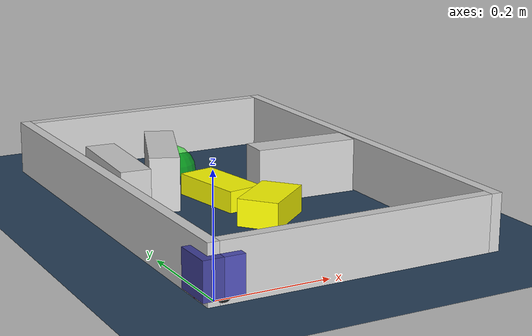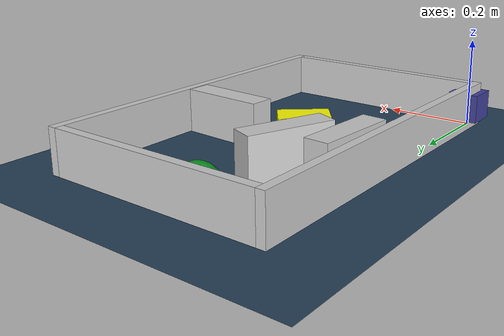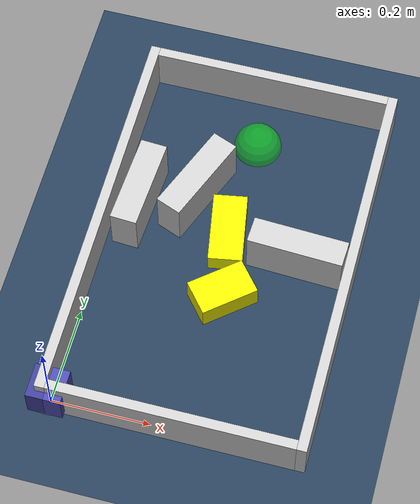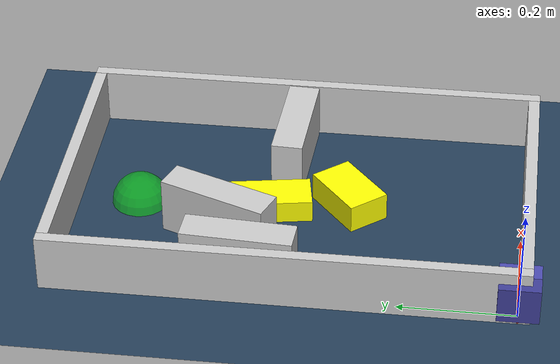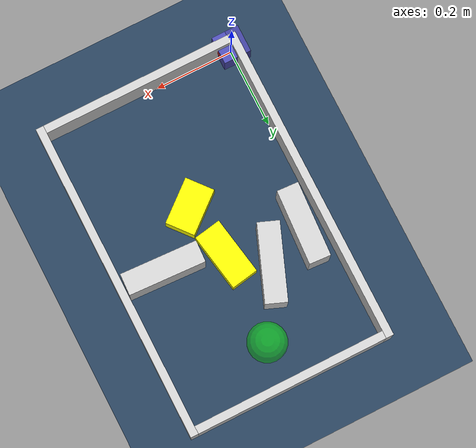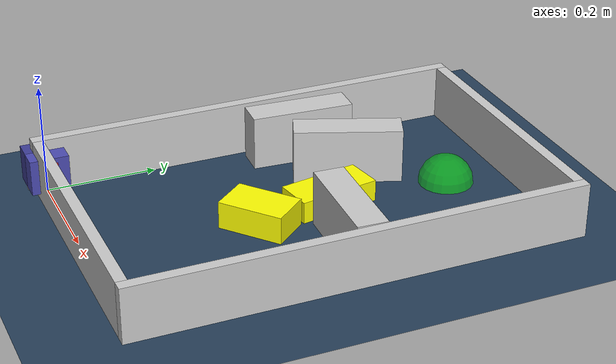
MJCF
<?xml version="1.0" ?>
<mujoco model="generated_environment">
  <option cone="elliptic" integrator="implicitfast" iterations="100" timestep="0.002"/>
  <default>
    <geom density="1"/>
  </default>
  <asset>
    <texture builtin="gradient" height="3072" rgb1="0.3 0.5 0.7" rgb2="0 0 0" type="skybox" width="512"/>
    <texture builtin="checker" height="300" mark="edge" markrgb="0.8 0.8 0.8" name="groundplane" rgb1="0.2 0.3 0.4" rgb2="0.1 0.2 0.3" type="2d" width="300"/>
    <material name="groundplane" reflectance="0.2" texrepeat="5 5" texture="groundplane" texuniform="true"/>
    <material name="robot" rgba="1.0 1.0 0.0 1.0"/>
  </asset>
  <include file="/home/dhruv/projects_dhruv/namo/namo_cpp/test_xml/little-car-modeling-package/assets/mjcf/little_car.xml"/>
  <worldbody>
    <light dir="0 0 -1" directional="true" pos="0 0 1.5"/>
    <geom condim="4" friction="0.5 0.005 0.001" material="groundplane" name="floor" size="0 0 0.05" type="plane"/>
    <body name="walls">
      <geom name="wall_1" condim="4" pos="-0.01 0.3875 0.05" friction="1 0.005 0.0001" rgba="0.800000011920929 0.800000011920929 0.800000011920929 1.0" size="0.01 0.40750000000000003 0.05" type="box"/>
      <geom name="wall_2" condim="4" pos="0.5 0.3875 0.05" friction="1 0.005 0.0001" rgba="0.800000011920929 0.800000011920929 0.800000011920929 1.0" size="0.01 0.40750000000000003 0.05" type="box"/>
      <geom name="wall_3" condim="4" pos="0.245 -0.01 0.05" friction="1 0.005 0.0001" rgba="0.800000011920929 0.800000011920929 0.800000011920929 1.0" size="0.245 0.01 0.05" type="box"/>
      <geom name="wall_4" condim="4" pos="0.245 0.785 0.05" friction="1 0.005 0.0001" rgba="0.800000011920929 0.800000011920929 0.800000011920929 1.0" size="0.245 0.01 0.05" type="box"/>
    </body>
    <body name="obstacle_1_movable">
      <geom name="obstacle_1_movable" condim="4" pos="0.23855861295672662 0.44191595954652496 0.02" quat="0.9961665807766763 0 0 0.08747653024500743" friction="1 0.005 0.0001" rgba="1 1 0 1" size="0.035 0.075 0.02" type="box" mass="0.1"/>
      <joint type="free"/>
    </body>
    <body name="obstacle_2_movable">
      <geom name="obstacle_2_movable" condim="4" pos="0.26376377628185665 0.302040489316197 0.025" quat="0.4242645773538015 0 0 0.9055382755040232" friction="1 0.005 0.0001" rgba="1 1 0 1" size="0.0375 0.06 0.025" type="box" mass="0.1"/>
      <joint type="free"/>
    </body>
    <body name="wall_5">
      <geom name="wall_5" condim="4" pos="0.3894862985297576 0.41167068499657516 0.05" quat="0.7234316319428069 0 0 0.6903960268603573" friction="1 0.005 0.0001" rgba="0.800000011920929 0.800000011920929 0.800000011920929 1.0" size="0.0275 0.0975 0.05" type="box"/>
    </body>
    <body name="wall_6">
      <geom name="wall_6" condim="4" pos="0.1544634242491471 0.5154454979925726 0.05" quat="-0.9825764311721743 0 0 0.18585897047211222" friction="1 0.005 0.0001" rgba="0.800000011920929 0.800000011920929 0.800000011920929 1.0" size="0.0275 0.0975 0.05" type="box"/>
    </body>
    <body name="wall_7">
      <geom name="wall_7" condim="4" pos="0.046298373686063404 0.4662858224631218 0.05" quat="0.7275985492095077 0 0 0.6860031714126543" friction="1 0.005 0.0001" rgba="0.800000011920929 0.800000011920929 0.800000011920929 1.0" size="0.095 0.0275 0.05" type="box"/>
    </body>
    <site name="goal" type="sphere" size="0.05 0.05 0.05" rgba="0 1 0 0.5" pos="0.244197 0.6700109999999999 0.0"/>
  </worldbody>
</mujoco>

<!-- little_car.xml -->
<mujoco model="little_car">
  <compiler angle="radian" autolimits="true"/>
  <default>
    <geom condim="4"/>
    <joint damping="0.01" armature="0.0001"/>
  </default>
  <worldbody>
    <body name="car" pos="0 0 0.010000">
      <freejoint name="car_freejoint"/>
      <inertial pos="0.000000 0 0.037500" mass="0.350000"
                diaginertia="0.000266 0.000266 0.000286"/>
      <geom name="front_chassis_collision" type="box" pos="0.017500 0 0.037500"
            size="0.017500 0.035000 0.032500"
            rgba="0.3 0.3 0.7 1"/>
      <geom name="rear_chassis_collision" type="box" pos="-0.017500 0 0.037500"
            size="0.017500 0.035000 0.032500"
            rgba="0.25 0.25 0.6 1"/>
      <geom name="front_marker" type="box" pos="0.034000 0 0.050500"
            size="0.002000 0.015000 0.010000"
            rgba="1.0 0.2 0.2 1" contype="0" conaffinity="0"/>

      <body name="rear_support_body" pos="-0.030000 0.000000 0.002500">
        <joint name="rear_caster_joint" type="ball" damping="0.0001"/>
        <inertial pos="0 0 0" mass="0.025000"
                  diaginertia="0.000001 0.000001 0.000001"/>
        <geom name="rear_support" type="sphere"
              pos="0 0 0"
              size="0.002500"
              friction="0.000000 0.000000 0.000000"
              rgba="0.7 0.1 0.1 1"/>
      </body>

      <body name="front_support_body" pos="0.030000 0.000000 0.002500">
        <joint name="front_caster_joint" type="ball" damping="0.0001"/>
        <inertial pos="0 0 0" mass="0.025000"
                  diaginertia="0.000001 0.000001 0.000001"/>
        <geom name="front_support" type="sphere"
              pos="0 0 0"
              size="0.002500"
              friction="0.000000 0.000000 0.000000"
              rgba="0.1 0.7 0.1 1"/>
      </body>

      <body name="left_wheel" pos="0.000000 0.034000 0.015000">
        <inertial pos="0 0 0" mass="0.050000"
                  diaginertia="0.000003 0.000006 0.000003"/>
        <joint name="left_wheel_joint" type="hinge" axis="0 1 0"/>
        <geom name="left_wheel_collision" type="cylinder" size="0.015000 0.000500"
              euler="1.57079632679 0 0" rgba="0.1 0.1 0.1 1"/>
      </body>

      <body name="right_wheel" pos="0.000000 -0.034000 0.015000">
        <inertial pos="0 0 0" mass="0.050000"
                  diaginertia="0.000003 0.000006 0.000003"/>
        <joint name="right_wheel_joint" type="hinge" axis="0 1 0"/>
        <geom name="right_wheel_collision" type="cylinder" size="0.015000 0.000500"
              euler="1.57079632679 0 0" rgba="0.1 0.1 0.1 1"/>
      </body>
    </body>
  </worldbody>
  <contact>
    <exclude body1="car" body2="left_wheel"/>
    <exclude body1="car" body2="right_wheel"/>
  </contact>
  <actuator>
    <velocity name="left_wheel_drive" joint="left_wheel_joint"
              ctrlrange="-25.000000 25.000000"
              kv="0.750000" forcerange="-0.500000 0.500000"/>
    <velocity name="right_wheel_drive" joint="right_wheel_joint"
              ctrlrange="-25.000000 25.000000"
              kv="0.750000" forcerange="-0.500000 0.500000"/>
  </actuator>
</mujoco>
